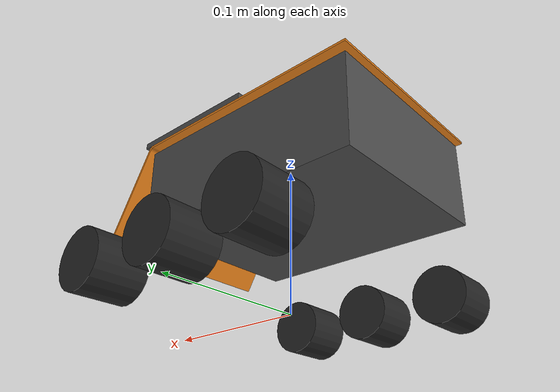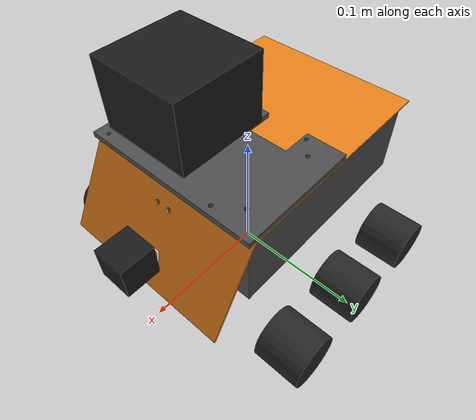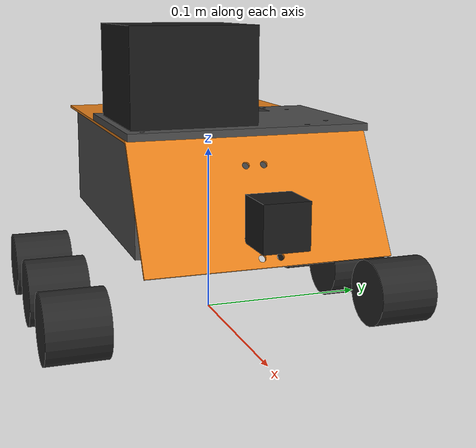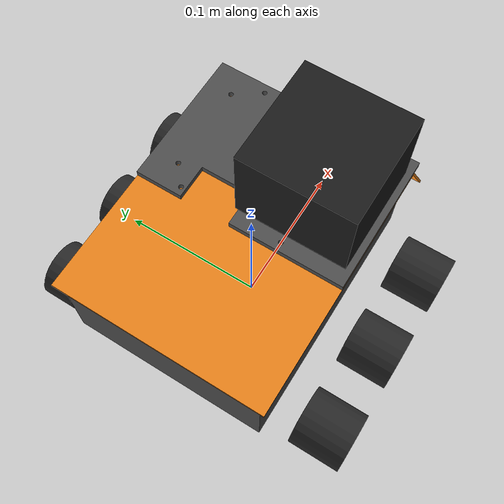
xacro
<?xml version="1.0"?>
<robot name="stubentiger" xmlns:xacro="http://www.ros.org/wiki/xacro">
  <xacro:arg name="hardware" default="mock"/>
  <xacro:arg name="controllers_file" default=""/>
  <xacro:arg name="sensors" default="false"/>
  <xacro:arg name="serial_port" default="/dev/arduino"/>
  <!-- Encoder counts per sprocket turn, 48 per motor turn (#10); calibrated in v0.2.0. -->
  <xacro:arg name="counts_per_rev" default="979.62"/>

  <xacro:property name="hardware" value="$(arg hardware)"/>
  <xacro:if value="${hardware not in ['gazebo', 'real', 'mock']}">
    ${xacro.fatal("hardware must be gazebo, real or mock, not '" + hardware + "'")}
  </xacro:if>

  <xacro:include filename="stubentiger.ros2_control.xacro"/>

  <!-- Geometry, in metres. -->
  <xacro:property name="base_link_z" value="0.027"/>
  <xacro:property name="wheel_radius" value="0.01966"/>
  <xacro:property name="wheel_width" value="0.035"/>
  <xacro:property name="wheel_y" value="0.095"/>
  <xacro:property name="wheel_x_front" value="0.0615"/>
  <xacro:property name="wheel_x_rear" value="-0.0615"/>
  <xacro:property name="chassis_x_min" value="-0.0925"/>
  <xacro:property name="chassis_x_max" value="0.1025"/>
  <xacro:property name="chassis_width" value="0.139"/>
  <xacro:property name="chassis_z_min" value="0.055"/>
  <xacro:property name="chassis_z_max" value="0.118"/>

  <xacro:property name="mm" value="0.001"/>
  <xacro:property name="cover_plate_cad_x_centre" value="0.19767"/>
  <xacro:property name="cover_plate_cad_z_centre" value="0.06767"/>
  <xacro:property name="cover_plate_cad_y_top" value="0.06316"/>
  <xacro:property name="cover_plate_width" value="0.134"/>
  <xacro:property name="plate_thickness" value="0.004"/>
  <xacro:property name="sensor_plate_length" value="0.090"/>
  <xacro:property name="sensor_plate_width" value="0.134"/>
  <xacro:property name="sensor_plate_top" value="${chassis_z_max + plate_thickness}"/>
  <xacro:property name="hull_x_max" value="0.070"/>

  <!-- Sensor frames, relative to base_footprint, all level. The LiDAR's yaw stays 0 until
       bring-up measures it; the IMU's place is a placeholder until it is mounted (#12). -->
  <xacro:property name="lidar_x" value="0.0295"/>
  <xacro:property name="lidar_y" value="-0.028"/>
  <xacro:property name="lidar_z" value="0.165"/>
  <xacro:property name="lidar_top" value="0.175"/>
  <xacro:property name="lidar_body_size" value="0.07"/>
  <xacro:property name="camera_case_size" value="0.025"/>
  <xacro:property name="imu_z" value="0.118"/>
  <xacro:property name="camera_x" value="0.1225"/>
  <xacro:property name="camera_z" value="0.080"/>

  <!-- Mass: 2.2 kg in all, centre of mass at x -0.010, z 0.070 above the floor. -->
  <xacro:property name="total_mass" value="2.2"/>
  <xacro:property name="wheel_mass" value="0.05"/>
  <xacro:property name="com_x" value="-0.010"/>
  <xacro:property name="com_z" value="0.070"/>
  <xacro:property name="chassis_mass" value="${total_mass - 6 * wheel_mass}"/>

  <!-- Drive: the motor's no-load speed at the wheel; one side's stall torque over its 3 wheels.
       Without an effort limit, DART's velocity servo has infinite torque. -->
  <xacro:property name="wheel_velocity_limit" value="48.2"/>
  <xacro:property name="stall_torque_per_side" value="0.54"/>
  <xacro:property name="wheel_effort_limit" value="${stall_torque_per_side / 3}"/>

  <xacro:property name="wheel_mu_sideways" value="1.0"/>
  <xacro:property name="wheel_mu_rolling" value="1.0"/>

  <!-- Chassis box, and its centre of mass placed so the whole robot's lands at (com_x, com_z). -->
  <xacro:property name="chassis_length" value="${chassis_x_max - chassis_x_min}"/>
  <xacro:property name="chassis_height" value="${chassis_z_max - chassis_z_min}"/>
  <xacro:property name="chassis_x" value="${(chassis_x_max + chassis_x_min) / 2}"/>
  <xacro:property name="chassis_z" value="${(chassis_z_max + chassis_z_min) / 2 - base_link_z}"/>
  <xacro:property name="chassis_com_x" value="${total_mass * com_x / chassis_mass}"/>
  <xacro:property name="chassis_com_z"
    value="${(total_mass * com_z - 6 * wheel_mass * wheel_radius) / chassis_mass - base_link_z}"/>

  <!-- Visual colours, so Gazebo and RViz2 don't draw the boxes black. -->
  <material name="chassis">
    <color rgba="0.9 0.5 0.1 1"/>
  </material>
  <material name="wheel">
    <color rgba="0.15 0.15 0.15 1"/>
  </material>
  <material name="plate">
    <color rgba="0.3 0.3 0.3 1"/>
  </material>
  <material name="sensor">
    <color rgba="0.1 0.1 0.1 1"/>
  </material>

  <link name="base_footprint"/>

  <joint name="base_joint" type="fixed">
    <parent link="base_footprint"/>
    <child link="base_link"/>
    <origin xyz="0 0 ${base_link_z}" rpy="0 0 0"/>
  </joint>

  <link name="base_link">
    <!-- The cover plate, turned from its CAD axes to x forward, z up. -->
    <visual>
      <origin
        xyz="${chassis_x + cover_plate_cad_x_centre} ${-cover_plate_cad_z_centre}
          ${chassis_z_max - cover_plate_cad_y_top - base_link_z}"
        rpy="${pi / 2} 0 ${pi}"/>
      <geometry>
        <mesh filename="package://stubentiger_description/meshes/cover_plate.stl"
          scale="${mm} ${mm} ${mm}"/>
      </geometry>
      <material name="chassis"/>
    </visual>
    <!-- The hull under the cover plate, kept inside it and behind its slanted front. -->
    <visual>
      <origin xyz="${(chassis_x_min + hull_x_max) / 2} 0 ${chassis_z - plate_thickness / 2}"
        rpy="0 0 0"/>
      <geometry>
        <box size="${hull_x_max - chassis_x_min} ${cover_plate_width - 2 * plate_thickness}
          ${chassis_height - plate_thickness}"/>
      </geometry>
      <material name="plate"/>
    </visual>
    <visual>
      <origin
        xyz="${lidar_x - sensor_plate_length / 2} ${-sensor_plate_width / 2}
          ${chassis_z_max - base_link_z}"
        rpy="0 0 0"/>
      <geometry>
        <mesh filename="package://stubentiger_description/meshes/sensor_plate.stl"
          scale="${mm} ${mm} ${mm}"/>
      </geometry>
      <material name="plate"/>
    </visual>
    <collision>
      <origin xyz="${chassis_x} 0 ${chassis_z}" rpy="0 0 0"/>
      <geometry>
        <box size="${chassis_length} ${chassis_width} ${chassis_height}"/>
      </geometry>
    </collision>
    <inertial>
      <origin xyz="${chassis_com_x} 0 ${chassis_com_z}" rpy="0 0 0"/>
      <mass value="${chassis_mass}"/>
      <inertia
        ixx="${chassis_mass * (chassis_width**2 + chassis_height**2) / 12}" ixy="0" ixz="0"
        iyy="${chassis_mass * (chassis_length**2 + chassis_height**2) / 12}" iyz="0"
        izz="${chassis_mass * (chassis_length**2 + chassis_width**2) / 12}"/>
    </inertial>
  </link>

  <!-- Sensor frames (REP-105), with boxes for the sensors' bodies. -->
  <joint name="lidar_joint" type="fixed">
    <parent link="base_link"/>
    <child link="lidar_link"/>
    <origin xyz="${lidar_x} ${lidar_y} ${lidar_z - base_link_z}" rpy="0 0 0"/>
  </joint>
  <!-- The RPLIDAR A1 body, from the sensor plate up to the LiDAR's top. -->
  <link name="lidar_link">
    <visual>
      <origin xyz="0 0 ${(lidar_top + sensor_plate_top) / 2 - lidar_z}" rpy="0 0 0"/>
      <geometry>
        <box size="${lidar_body_size} ${lidar_body_size} ${lidar_top - sensor_plate_top}"/>
      </geometry>
      <material name="sensor"/>
    </visual>
  </link>

  <joint name="imu_joint" type="fixed">
    <parent link="base_link"/>
    <child link="imu_link"/>
    <origin xyz="0 0 ${imu_z - base_link_z}" rpy="0 0 0"/>
  </joint>
  <link name="imu_link"/>

  <joint name="camera_joint" type="fixed">
    <parent link="base_link"/>
    <child link="camera_link"/>
    <origin xyz="${camera_x} 0 ${camera_z - base_link_z}" rpy="0 0 0"/>
  </joint>
  <!-- The camera case, behind its lens. -->
  <link name="camera_link">
    <visual>
      <origin xyz="${-camera_case_size / 2} 0 0" rpy="0 0 0"/>
      <geometry>
        <box size="${camera_case_size} ${camera_case_size} ${camera_case_size}"/>
      </geometry>
      <material name="sensor"/>
    </visual>
  </link>

  <!-- The camera's optical frame (REP-103): z forward, x right, y down. -->
  <joint name="camera_optical_joint" type="fixed">
    <parent link="camera_link"/>
    <child link="camera_optical_link"/>
    <origin xyz="0 0 0" rpy="${-pi / 2} 0 ${-pi / 2}"/>
  </joint>
  <link name="camera_optical_link"/>

  <!-- One floor wheel; mimic is the commanded joint it follows, or empty for a commanded one. -->
  <xacro:macro name="floor_wheel" params="name x y mimic">
    <joint name="${name}_joint" type="continuous">
      <parent link="base_link"/>
      <child link="${name}_link"/>
      <origin xyz="${x} ${y} ${wheel_radius - base_link_z}" rpy="0 0 0"/>
      <axis xyz="0 1 0"/>
      <limit effort="${wheel_effort_limit}" velocity="${wheel_velocity_limit}"/>
      <xacro:if value="${mimic != ''}">
        <mimic joint="${mimic}" multiplier="1" offset="0"/>
      </xacro:if>
    </joint>

    <link name="${name}_link">
      <visual>
        <origin xyz="0 0 0" rpy="${pi / 2} 0 0"/>
        <geometry>
          <cylinder radius="${wheel_radius}" length="${wheel_width}"/>
        </geometry>
        <material name="wheel"/>
      </visual>
      <collision>
        <origin xyz="0 0 0" rpy="${pi / 2} 0 0"/>
        <geometry>
          <cylinder radius="${wheel_radius}" length="${wheel_width}"/>
        </geometry>
      </collision>
      <inertial>
        <mass value="${wheel_mass}"/>
        <inertia
          ixx="${wheel_mass * (3 * wheel_radius**2 + wheel_width**2) / 12}" ixy="0" ixz="0"
          iyy="${wheel_mass * wheel_radius**2 / 2}" iyz="0"
          izz="${wheel_mass * (3 * wheel_radius**2 + wheel_width**2) / 12}"/>
      </inertial>
    </link>

    <gazebo reference="${name}_link">
      <mu1>${wheel_mu_sideways}</mu1>
      <mu2>${wheel_mu_rolling}</mu2>
      <fdir1>0 0 1</fdir1>
    </gazebo>
  </xacro:macro>

  <!-- Middle wheel commanded; _2 in front of it, _3 behind it. -->
  <xacro:macro name="track" params="side y">
    <xacro:floor_wheel name="${side}_wheel" x="0" y="${y}" mimic=""/>
    <xacro:floor_wheel name="${side}_wheel_2" x="${wheel_x_front}" y="${y}"
      mimic="${side}_wheel_joint"/>
    <xacro:floor_wheel name="${side}_wheel_3" x="${wheel_x_rear}" y="${y}"
      mimic="${side}_wheel_joint"/>
  </xacro:macro>

  <xacro:track side="left" y="${wheel_y}"/>
  <xacro:track side="right" y="${-wheel_y}"/>

  <xacro:stubentiger_ros2_control hardware="${hardware}"
    serial_port="$(arg serial_port)" counts_per_rev="$(arg counts_per_rev)"/>

  <!-- The body's true pose in the world, on Gazebo's /model/stubentiger/pose. Tests judge
       driving on it, never on /odom, which would hide wheel slip. -->
  <gazebo>
    <plugin filename="gz-sim-pose-publisher-system" name="gz::sim::systems::PosePublisher">
      <publish_model_pose>true</publish_model_pose>
      <publish_link_pose>false</publish_link_pose>
      <use_pose_vector_msg>false</use_pose_vector_msg>
      <update_frequency>100</update_frequency>
    </plugin>
  </gazebo>

  <xacro:if value="$(arg sensors)">
    <xacro:include filename="stubentiger.sensors.xacro"/>
  </xacro:if>

  <xacro:if value="${hardware == 'gazebo' and '$(arg controllers_file)' != ''}">
    <gazebo>
      <plugin filename="gz_ros2_control-system" name="gz_ros2_control::GazeboSimROS2ControlPlugin">
        <parameters>$(arg controllers_file)</parameters>
      </plugin>
    </gazebo>
  </xacro:if>
</robot>
